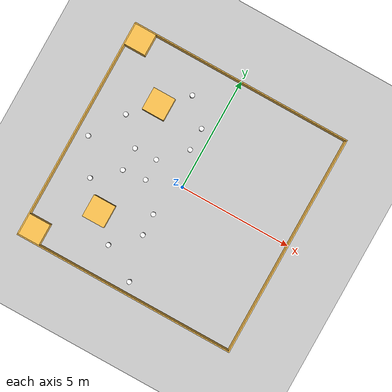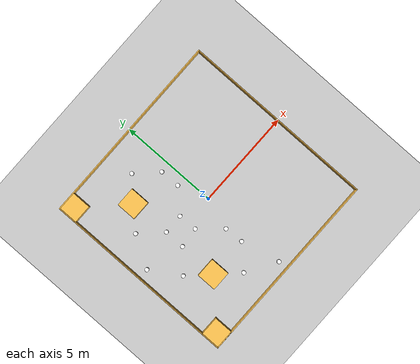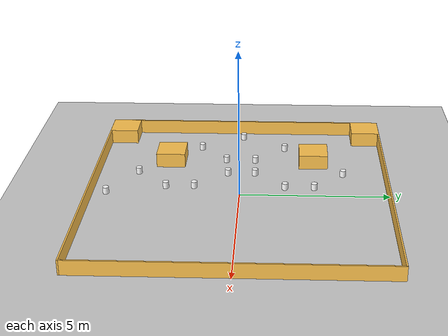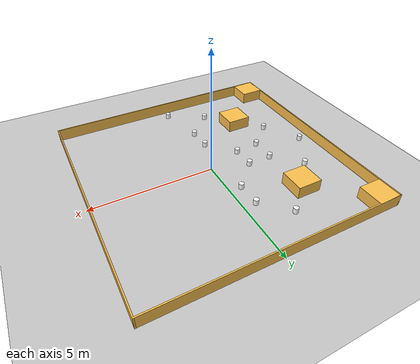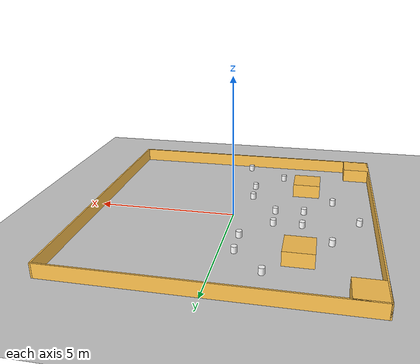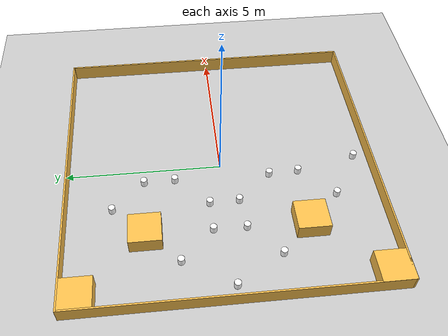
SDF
<sdf version="1.6">
 <world name="default">
  <model name="ground_plane">
   <static>1</static>
   <link name="link">
    <collision name="collision">
     <geometry><plane><normal>0 0 1</normal><size>100 100</size></plane></geometry>
     <surface><friction><ode><mu>100</mu><mu2>50</mu2></ode></friction></surface>
    </collision>
    <visual name="visual">
     <cast_shadows>0</cast_shadows>
     <geometry><plane><normal>0 0 1</normal><size>100 100</size></plane></geometry>
     <material>
      <script><uri>file://media/materials/scripts/gazebo.material</uri><name>Gazebo/Grey</name></script>
     </material>
    </visual>
   </link>
  </model>
  <model name="low-map">
   <pose>-0.009415 0.0011 0 0 -0 0</pose>
   <link name="Wall_27">
    <collision name="Wall_27_Collision">
     <geometry><box><size>9.89993 0.05 0.5</size></box></geometry>
     <pose>0 0 0.25 0 -0 0</pose>
    </collision>
    <visual name="Wall_27_Visual">
     <pose>0 0 0.25 0 -0 0</pose>
     <geometry><box><size>9.89993 0.05 0.5</size></box></geometry>
     <material>
      <script><uri>file://media/materials/scripts/gazebo.material</uri><name>Gazebo/Grey</name></script>
      <ambient>1 0.764706 0.305882 1</ambient>
     </material>
    </visual>
    <pose>0 4.925 0 0 -0 0</pose>
   </link>
   <link name="Wall_28">
    <collision name="Wall_28_Collision">
     <geometry><box><size>9.90017 0.05 0.5</size></box></geometry>
     <pose>0 0 0.25 0 -0 0</pose>
    </collision>
    <visual name="Wall_28_Visual">
     <pose>0 0 0.25 0 -0 0</pose>
     <geometry><box><size>9.90017 0.05 0.5</size></box></geometry>
     <material>
      <script><uri>file://media/materials/scripts/gazebo.material</uri><name>Gazebo/Grey</name></script>
      <ambient>1 0.764706 0.305882 1</ambient>
     </material>
    </visual>
    <pose>4.925 0 0 0 0 -1.5708</pose>
   </link>
   <link name="Wall_29">
    <collision name="Wall_29_Collision">
     <geometry><box><size>9.90007 0.05 0.5</size></box></geometry>
     <pose>0 0 0.25 0 -0 0</pose>
    </collision>
    <visual name="Wall_29_Visual">
     <pose>0 0 0.25 0 -0 0</pose>
     <geometry><box><size>9.90007 0.05 0.5</size></box></geometry>
     <material>
      <script><uri>file://media/materials/scripts/gazebo.material</uri><name>Gazebo/Grey</name></script>
      <ambient>1 0.764706 0.305882 1</ambient>
     </material>
    </visual>
    <pose>0 -4.925 0 0 -0 3.14159</pose>
   </link>
   <link name="Wall_30">
    <collision name="Wall_30_Collision">
     <geometry><box><size>9.9 0.05 0.5</size></box></geometry>
     <pose>0 0 0.25 0 -0 0</pose>
    </collision>
    <visual name="Wall_30_Visual">
     <pose>0 0 0.25 0 -0 0</pose>
     <geometry><box><size>9.9 0.05 0.5</size></box></geometry>
     <material>
      <script><uri>file://media/materials/scripts/gazebo.material</uri><name>Gazebo/Grey</name></script>
      <ambient>1 0.764706 0.305882 1</ambient>
     </material>
    </visual>
    <pose>-4.925 0 0 0 -0 1.5708</pose>
   </link>
   <static>1</static>
  </model>
  <model name="unit_box_0_orange_clone_8">
   <link name="link">
    <inertial>
     <mass>10</mass>
     <inertia><ixx>0.473401</ixx><ixy>0</ixy><ixz>0</ixz><iyy>2.14637</iyy><iyz>0</iyz><izz>2.14637</izz></inertia>
    </inertial>
    <visual name="visual">
     <geometry><box><size>1.00001 1 0.5</size></box></geometry>
     <material>
      <script><name>Gazebo/Grey</name><uri>file://media/materials/scripts/gazebo.material</uri></script>
      <ambient>1 0.765 0.306 1</ambient>
      <diffuse>0.7 0.7 0.7 1</diffuse>
      <specular>0.01 0.01 0.01 1</specular>
      <emissive>0 0 0 1</emissive>
      <shader type="vertex"><normal_map>__default__</normal_map></shader>
     </material>
    </visual>
    <collision name="collision">
     <geometry><box><size>1 1 0.5</size></box></geometry>
     <surface>
      <friction>
       <ode><mu>1</mu><mu2>1</mu2><fdir1>0 0 0</fdir1><slip1>0</slip1><slip2>0</slip2></ode>
       <torsional>
        <coefficient>1</coefficient>
        <patch_radius>0</patch_radius>
        <surface_radius>0</surface_radius>
        <use_patch_radius>1</use_patch_radius>
        <ode><slip>0</slip></ode>
       </torsional>
      </friction>
      <bounce><restitution_coefficient>0</restitution_coefficient><threshold>1e+06</threshold></bounce>
      <contact>
       <collide_without_contact>0</collide_without_contact>
       <collide_without_contact_bitmask>1</collide_without_contact_bitmask>
       <collide_bitmask>1</collide_bitmask>
       <ode>
        <soft_cfm>0</soft_cfm>
        <soft_erp>0.2</soft_erp>
        <kp>1e+13</kp>
        <kd>1</kd>
        <max_vel>0.01</max_vel>
        <min_depth>0</min_depth>
       </ode>
       <bullet>
        <split_impulse>1</split_impulse>
        <split_impulse_penetration_threshold>-0.01</split_impulse_penetration_threshold>
        <soft_cfm>0</soft_cfm>
        <soft_erp>0.2</soft_erp>
        <kp>1e+13</kp>
        <kd>1</kd>
       </bullet>
      </contact>
     </surface>
    </collision>
   </link>
   <static>1</static>
   <pose>-2.5 -2.5 0.25 0 -0 0</pose>
  </model>
  <model name="unit_box_0_orange_clone_8_clone">
   <link name="link">
    <inertial>
     <mass>10</mass>
     <inertia><ixx>0.473401</ixx><ixy>0</ixy><ixz>0</ixz><iyy>2.14637</iyy><iyz>0</iyz><izz>2.14637</izz></inertia>
    </inertial>
    <visual name="visual">
     <geometry><box><size>1.00001 1 0.5</size></box></geometry>
     <material>
      <script><name>Gazebo/Grey</name><uri>file://media/materials/scripts/gazebo.material</uri></script>
      <ambient>1 0.765 0.306 1</ambient>
      <diffuse>0.7 0.7 0.7 1</diffuse>
      <specular>0.01 0.01 0.01 1</specular>
      <emissive>0 0 0 1</emissive>
      <shader type="vertex"><normal_map>__default__</normal_map></shader>
     </material>
    </visual>
    <collision name="collision">
     <geometry><box><size>1 1 0.5</size></box></geometry>
     <surface>
      <friction>
       <ode><mu>1</mu><mu2>1</mu2><fdir1>0 0 0</fdir1><slip1>0</slip1><slip2>0</slip2></ode>
       <torsional>
        <coefficient>1</coefficient>
        <patch_radius>0</patch_radius>
        <surface_radius>0</surface_radius>
        <use_patch_radius>1</use_patch_radius>
        <ode><slip>0</slip></ode>
       </torsional>
      </friction>
      <bounce><restitution_coefficient>0</restitution_coefficient><threshold>1e+06</threshold></bounce>
      <contact>
       <collide_without_contact>0</collide_without_contact>
       <collide_without_contact_bitmask>1</collide_without_contact_bitmask>
       <collide_bitmask>1</collide_bitmask>
       <ode>
        <soft_cfm>0</soft_cfm>
        <soft_erp>0.2</soft_erp>
        <kp>1e+13</kp>
        <kd>1</kd>
        <max_vel>0.01</max_vel>
        <min_depth>0</min_depth>
       </ode>
       <bullet>
        <split_impulse>1</split_impulse>
        <split_impulse_penetration_threshold>-0.01</split_impulse_penetration_threshold>
        <soft_cfm>0</soft_cfm>
        <soft_erp>0.2</soft_erp>
        <kp>1e+13</kp>
        <kd>1</kd>
       </bullet>
      </contact>
     </surface>
    </collision>
   </link>
   <static>1</static>
   <pose>-2.5 2.5 0.25 0 -0 0</pose>
  </model>
  <model name="unit_box_0_orange_clone_7_clone_0">
   <link name="link">
    <inertial>
     <mass>10</mass>
     <inertia><ixx>0.473401</ixx><ixy>0</ixy><ixz>0</ixz><iyy>2.14637</iyy><iyz>0</iyz><izz>2.14637</izz></inertia>
    </inertial>
    <visual name="visual">
     <geometry><box><size>1.00001 1 0.5</size></box></geometry>
     <material>
      <script><name>Gazebo/Grey</name><uri>file://media/materials/scripts/gazebo.material</uri></script>
      <ambient>1 0.765 0.306 1</ambient>
      <diffuse>0.7 0.7 0.7 1</diffuse>
      <specular>0.01 0.01 0.01 1</specular>
      <emissive>0 0 0 1</emissive>
      <shader type="vertex"><normal_map>__default__</normal_map></shader>
     </material>
    </visual>
    <collision name="collision">
     <geometry><box><size>1 1 0.5</size></box></geometry>
     <surface>
      <friction>
       <ode><mu>1</mu><mu2>1</mu2><fdir1>0 0 0</fdir1><slip1>0</slip1><slip2>0</slip2></ode>
       <torsional>
        <coefficient>1</coefficient>
        <patch_radius>0</patch_radius>
        <surface_radius>0</surface_radius>
        <use_patch_radius>1</use_patch_radius>
        <ode><slip>0</slip></ode>
       </torsional>
      </friction>
      <bounce><restitution_coefficient>0</restitution_coefficient><threshold>1e+06</threshold></bounce>
      <contact>
       <collide_without_contact>0</collide_without_contact>
       <collide_without_contact_bitmask>1</collide_without_contact_bitmask>
       <collide_bitmask>1</collide_bitmask>
       <ode>
        <soft_cfm>0</soft_cfm>
        <soft_erp>0.2</soft_erp>
        <kp>1e+13</kp>
        <kd>1</kd>
        <max_vel>0.01</max_vel>
        <min_depth>0</min_depth>
       </ode>
       <bullet>
        <split_impulse>1</split_impulse>
        <split_impulse_penetration_threshold>-0.01</split_impulse_penetration_threshold>
        <soft_cfm>0</soft_cfm>
        <soft_erp>0.2</soft_erp>
        <kp>1e+13</kp>
        <kd>1</kd>
       </bullet>
      </contact>
     </surface>
    </collision>
   </link>
   <static>1</static>
   <pose>-4.45682 -4.44621 0.25 0 -0 0</pose>
  </model>
  <model name="unit_box_0_orange_clone_7_clone_1">
   <link name="link">
    <inertial>
     <mass>10</mass>
     <inertia><ixx>0.473401</ixx><ixy>0</ixy><ixz>0</ixz><iyy>2.14637</iyy><iyz>0</iyz><izz>2.14637</izz></inertia>
    </inertial>
    <visual name="visual">
     <geometry><box><size>1.00001 1 0.5</size></box></geometry>
     <material>
      <script><name>Gazebo/Grey</name><uri>file://media/materials/scripts/gazebo.material</uri></script>
      <ambient>1 0.765 0.306 1</ambient>
      <diffuse>0.7 0.7 0.7 1</diffuse>
      <specular>0.01 0.01 0.01 1</specular>
      <emissive>0 0 0 1</emissive>
      <shader type="vertex"><normal_map>__default__</normal_map></shader>
     </material>
    </visual>
    <collision name="collision">
     <geometry><box><size>1 1 0.5</size></box></geometry>
     <surface>
      <friction>
       <ode><mu>1</mu><mu2>1</mu2><fdir1>0 0 0</fdir1><slip1>0</slip1><slip2>0</slip2></ode>
       <torsional>
        <coefficient>1</coefficient>
        <patch_radius>0</patch_radius>
        <surface_radius>0</surface_radius>
        <use_patch_radius>1</use_patch_radius>
        <ode><slip>0</slip></ode>
       </torsional>
      </friction>
      <bounce><restitution_coefficient>0</restitution_coefficient><threshold>1e+06</threshold></bounce>
      <contact>
       <collide_without_contact>0</collide_without_contact>
       <collide_without_contact_bitmask>1</collide_without_contact_bitmask>
       <collide_bitmask>1</collide_bitmask>
       <ode>
        <soft_cfm>0</soft_cfm>
        <soft_erp>0.2</soft_erp>
        <kp>1e+13</kp>
        <kd>1</kd>
        <max_vel>0.01</max_vel>
        <min_depth>0</min_depth>
       </ode>
       <bullet>
        <split_impulse>1</split_impulse>
        <split_impulse_penetration_threshold>-0.01</split_impulse_penetration_threshold>
        <soft_cfm>0</soft_cfm>
        <soft_erp>0.2</soft_erp>
        <kp>1e+13</kp>
        <kd>1</kd>
       </bullet>
      </contact>
     </surface>
    </collision>
   </link>
   <static>1</static>
   <pose>-4.4589 4.44936 0.25 0 -0 0</pose>
  </model>
  <model name="beer_big_7">
   <link name="link">
    <pose>0 0 0.115 0 -0 0</pose>
    <inertial>
     <mass>1.34731</mass>
     <inertia>
      <ixx>0.0028093</ixx>
      <ixy>0</ixy>
      <ixz>0</ixz>
      <iyy>0.0028093</iyy>
      <iyz>0</iyz>
      <izz>0.00226756</izz>
     </inertia>
    </inertial>
    <visual name="visual">
     <geometry><cylinder><radius>0.102222</radius><length>0.23</length></cylinder></geometry>
     <material>
      <script>
       <uri>model://beer/materials/scripts</uri>
       <uri>model://beer/materials/textures</uri>
       <name>Beer/Diffuse</name>
      </script>
      <ambient>1 1 1 1</ambient>
      <diffuse>1 1 1 1</diffuse>
      <specular>0 0 0 1</specular>
      <emissive>0 0 0 1</emissive>
     </material>
    </visual>
    <collision name="collision">
     <geometry><cylinder><radius>0.102222</radius><length>0.23</length></cylinder></geometry>
     <surface>
      <friction>
       <ode><mu>1</mu><mu2>1</mu2><fdir1>0 0 0</fdir1><slip1>0</slip1><slip2>0</slip2></ode>
       <torsional>
        <coefficient>1</coefficient>
        <patch_radius>0</patch_radius>
        <surface_radius>0</surface_radius>
        <use_patch_radius>1</use_patch_radius>
        <ode><slip>0</slip></ode>
       </torsional>
      </friction>
      <bounce><restitution_coefficient>0</restitution_coefficient><threshold>1e+06</threshold></bounce>
      <contact>
       <collide_without_contact>0</collide_without_contact>
       <collide_without_contact_bitmask>1</collide_without_contact_bitmask>
       <collide_bitmask>1</collide_bitmask>
       <ode>
        <soft_cfm>0</soft_cfm>
        <soft_erp>0.2</soft_erp>
        <kp>1e+13</kp>
        <kd>1</kd>
        <max_vel>0.01</max_vel>
        <min_depth>0</min_depth>
       </ode>
       <bullet>
        <split_impulse>1</split_impulse>
        <split_impulse_penetration_threshold>-0.01</split_impulse_penetration_threshold>
        <soft_cfm>0</soft_cfm>
        <soft_erp>0.2</soft_erp>
        <kp>1e+13</kp>
        <kd>1</kd>
       </bullet>
      </contact>
     </surface>
    </collision>
   </link>
   <static>0</static>
   <pose>-0.509102 -1.54707 0 0 -0 0</pose>
  </model>
  <model name="beer_big_9">
   <link name="link">
    <pose>0 0 0.115 0 -0 0</pose>
    <inertial>
     <mass>1.34731</mass>
     <inertia>
      <ixx>0.0028093</ixx>
      <ixy>0</ixy>
      <ixz>0</ixz>
      <iyy>0.0028093</iyy>
      <iyz>0</iyz>
      <izz>0.00226756</izz>
     </inertia>
    </inertial>
    <visual name="visual">
     <geometry><cylinder><radius>0.102222</radius><length>0.23</length></cylinder></geometry>
     <material>
      <script>
       <uri>model://beer/materials/scripts</uri>
       <uri>model://beer/materials/textures</uri>
       <name>Beer/Diffuse</name>
      </script>
      <ambient>1 1 1 1</ambient>
      <diffuse>1 1 1 1</diffuse>
      <specular>0 0 0 1</specular>
      <emissive>0 0 0 1</emissive>
     </material>
    </visual>
    <collision name="collision">
     <geometry><cylinder><radius>0.102222</radius><length>0.23</length></cylinder></geometry>
     <surface>
      <friction>
       <ode><mu>1</mu><mu2>1</mu2><fdir1>0 0 0</fdir1><slip1>0</slip1><slip2>0</slip2></ode>
       <torsional>
        <coefficient>1</coefficient>
        <patch_radius>0</patch_radius>
        <surface_radius>0</surface_radius>
        <use_patch_radius>1</use_patch_radius>
        <ode><slip>0</slip></ode>
       </torsional>
      </friction>
      <bounce><restitution_coefficient>0</restitution_coefficient><threshold>1e+06</threshold></bounce>
      <contact>
       <collide_without_contact>0</collide_without_contact>
       <collide_without_contact_bitmask>1</collide_without_contact_bitmask>
       <collide_bitmask>1</collide_bitmask>
       <ode>
        <soft_cfm>0</soft_cfm>
        <soft_erp>0.2</soft_erp>
        <kp>1e+13</kp>
        <kd>1</kd>
        <max_vel>0.01</max_vel>
        <min_depth>0</min_depth>
       </ode>
       <bullet>
        <split_impulse>1</split_impulse>
        <split_impulse_penetration_threshold>-0.01</split_impulse_penetration_threshold>
        <soft_cfm>0</soft_cfm>
        <soft_erp>0.2</soft_erp>
        <kp>1e+13</kp>
        <kd>1</kd>
       </bullet>
      </contact>
     </surface>
    </collision>
   </link>
   <static>0</static>
   <pose>-0.469175 -2.49856 0 0 -0 0</pose>
  </model>
  <model name="beer_big_11">
   <link name="link">
    <pose>0 0 0.115 0 -0 0</pose>
    <inertial>
     <mass>1.34731</mass>
     <inertia>
      <ixx>0.0028093</ixx>
      <ixy>0</ixy>
      <ixz>0</ixz>
      <iyy>0.0028093</iyy>
      <iyz>0</iyz>
      <izz>0.00226756</izz>
     </inertia>
    </inertial>
    <visual name="visual">
     <geometry><cylinder><radius>0.102222</radius><length>0.23</length></cylinder></geometry>
     <material>
      <script>
       <uri>model://beer/materials/scripts</uri>
       <uri>model://beer/materials/textures</uri>
       <name>Beer/Diffuse</name>
      </script>
      <ambient>1 1 1 1</ambient>
      <diffuse>1 1 1 1</diffuse>
      <specular>0 0 0 1</specular>
      <emissive>0 0 0 1</emissive>
     </material>
    </visual>
    <collision name="collision">
     <geometry><cylinder><radius>0.102222</radius><length>0.23</length></cylinder></geometry>
     <surface>
      <friction>
       <ode><mu>1</mu><mu2>1</mu2><fdir1>0 0 0</fdir1><slip1>0</slip1><slip2>0</slip2></ode>
       <torsional>
        <coefficient>1</coefficient>
        <patch_radius>0</patch_radius>
        <surface_radius>0</surface_radius>
        <use_patch_radius>1</use_patch_radius>
        <ode><slip>0</slip></ode>
       </torsional>
      </friction>
      <bounce><restitution_coefficient>0</restitution_coefficient><threshold>1e+06</threshold></bounce>
      <contact>
       <collide_without_contact>0</collide_without_contact>
       <collide_without_contact_bitmask>1</collide_without_contact_bitmask>
       <collide_bitmask>1</collide_bitmask>
       <ode>
        <soft_cfm>0</soft_cfm>
        <soft_erp>0.2</soft_erp>
        <kp>1e+13</kp>
        <kd>1</kd>
        <max_vel>0.01</max_vel>
        <min_depth>0</min_depth>
       </ode>
       <bullet>
        <split_impulse>1</split_impulse>
        <split_impulse_penetration_threshold>-0.01</split_impulse_penetration_threshold>
        <soft_cfm>0</soft_cfm>
        <soft_erp>0.2</soft_erp>
        <kp>1e+13</kp>
        <kd>1</kd>
       </bullet>
      </contact>
     </surface>
    </collision>
   </link>
   <static>0</static>
   <pose>-1.50904 -3.54688 0 0 -0 0</pose>
  </model>
  <model name="beer_big_12">
   <link name="link">
    <pose>0 0 0.115 0 -0 0</pose>
    <inertial>
     <mass>1.34731</mass>
     <inertia>
      <ixx>0.0028093</ixx>
      <ixy>0</ixy>
      <ixz>0</ixz>
      <iyy>0.0028093</iyy>
      <iyz>0</iyz>
      <izz>0.00226756</izz>
     </inertia>
    </inertial>
    <visual name="visual">
     <geometry><cylinder><radius>0.102222</radius><length>0.23</length></cylinder></geometry>
     <material>
      <script>
       <uri>model://beer/materials/scripts</uri>
       <uri>model://beer/materials/textures</uri>
       <name>Beer/Diffuse</name>
      </script>
      <ambient>1 1 1 1</ambient>
      <diffuse>1 1 1 1</diffuse>
      <specular>0 0 0 1</specular>
      <emissive>0 0 0 1</emissive>
     </material>
    </visual>
    <collision name="collision">
     <geometry><cylinder><radius>0.102222</radius><length>0.23</length></cylinder></geometry>
     <surface>
      <friction>
       <ode><mu>1</mu><mu2>1</mu2><fdir1>0 0 0</fdir1><slip1>0</slip1><slip2>0</slip2></ode>
       <torsional>
        <coefficient>1</coefficient>
        <patch_radius>0</patch_radius>
        <surface_radius>0</surface_radius>
        <use_patch_radius>1</use_patch_radius>
        <ode><slip>0</slip></ode>
       </torsional>
      </friction>
      <bounce><restitution_coefficient>0</restitution_coefficient><threshold>1e+06</threshold></bounce>
      <contact>
       <collide_without_contact>0</collide_without_contact>
       <collide_without_contact_bitmask>1</collide_without_contact_bitmask>
       <collide_bitmask>1</collide_bitmask>
       <ode>
        <soft_cfm>0</soft_cfm>
        <soft_erp>0.2</soft_erp>
        <kp>1e+13</kp>
        <kd>1</kd>
        <max_vel>0.01</max_vel>
        <min_depth>0</min_depth>
       </ode>
       <bullet>
        <split_impulse>1</split_impulse>
        <split_impulse_penetration_threshold>-0.01</split_impulse_penetration_threshold>
        <soft_cfm>0</soft_cfm>
        <soft_erp>0.2</soft_erp>
        <kp>1e+13</kp>
        <kd>1</kd>
       </bullet>
      </contact>
     </surface>
    </collision>
   </link>
   <static>0</static>
   <pose>-0.019658 -4.45128 0 0 -0 0</pose>
  </model>
  <model name="beer_big_14">
   <link name="link">
    <pose>0 0 0.115 0 -0 0</pose>
    <inertial>
     <mass>1.34731</mass>
     <inertia>
      <ixx>0.0028093</ixx>
      <ixy>0</ixy>
      <ixz>0</ixz>
      <iyy>0.0028093</iyy>
      <iyz>0</iyz>
      <izz>0.00226756</izz>
     </inertia>
    </inertial>
    <visual name="visual">
     <geometry><cylinder><radius>0.102222</radius><length>0.23</length></cylinder></geometry>
     <material>
      <script>
       <uri>model://beer/materials/scripts</uri>
       <uri>model://beer/materials/textures</uri>
       <name>Beer/Diffuse</name>
      </script>
      <ambient>1 1 1 1</ambient>
      <diffuse>1 1 1 1</diffuse>
      <specular>0 0 0 1</specular>
      <emissive>0 0 0 1</emissive>
     </material>
    </visual>
    <collision name="collision">
     <geometry><cylinder><radius>0.102222</radius><length>0.23</length></cylinder></geometry>
     <surface>
      <friction>
       <ode><mu>1</mu><mu2>1</mu2><fdir1>0 0 0</fdir1><slip1>0</slip1><slip2>0</slip2></ode>
       <torsional>
        <coefficient>1</coefficient>
        <patch_radius>0</patch_radius>
        <surface_radius>0</surface_radius>
        <use_patch_radius>1</use_patch_radius>
        <ode><slip>0</slip></ode>
       </torsional>
      </friction>
      <bounce><restitution_coefficient>0</restitution_coefficient><threshold>1e+06</threshold></bounce>
      <contact>
       <collide_without_contact>0</collide_without_contact>
       <collide_without_contact_bitmask>1</collide_without_contact_bitmask>
       <collide_bitmask>1</collide_bitmask>
       <ode>
        <soft_cfm>0</soft_cfm>
        <soft_erp>0.2</soft_erp>
        <kp>1e+13</kp>
        <kd>1</kd>
        <max_vel>0.01</max_vel>
        <min_depth>0</min_depth>
       </ode>
       <bullet>
        <split_impulse>1</split_impulse>
        <split_impulse_penetration_threshold>-0.01</split_impulse_penetration_threshold>
        <soft_cfm>0</soft_cfm>
        <soft_erp>0.2</soft_erp>
        <kp>1e+13</kp>
        <kd>1</kd>
       </bullet>
      </contact>
     </surface>
    </collision>
   </link>
   <static>0</static>
   <pose>-1.47418 -0.458885 0 0 -0 0</pose>
  </model>
  <model name="beer_big_15">
   <link name="link">
    <pose>0 0 0.115 0 -0 0</pose>
    <inertial>
     <mass>1.34731</mass>
     <inertia>
      <ixx>0.0028093</ixx>
      <ixy>0</ixy>
      <ixz>0</ixz>
      <iyy>0.0028093</iyy>
      <iyz>0</iyz>
      <izz>0.00226756</izz>
     </inertia>
    </inertial>
    <visual name="visual">
     <geometry><cylinder><radius>0.102222</radius><length>0.23</length></cylinder></geometry>
     <material>
      <script>
       <uri>model://beer/materials/scripts</uri>
       <uri>model://beer/materials/textures</uri>
       <name>Beer/Diffuse</name>
      </script>
      <ambient>1 1 1 1</ambient>
      <diffuse>1 1 1 1</diffuse>
      <specular>0 0 0 1</specular>
      <emissive>0 0 0 1</emissive>
     </material>
    </visual>
    <collision name="collision">
     <geometry><cylinder><radius>0.102222</radius><length>0.23</length></cylinder></geometry>
     <surface>
      <friction>
       <ode><mu>1</mu><mu2>1</mu2><fdir1>0 0 0</fdir1><slip1>0</slip1><slip2>0</slip2></ode>
       <torsional>
        <coefficient>1</coefficient>
        <patch_radius>0</patch_radius>
        <surface_radius>0</surface_radius>
        <use_patch_radius>1</use_patch_radius>
        <ode><slip>0</slip></ode>
       </torsional>
      </friction>
      <bounce><restitution_coefficient>0</restitution_coefficient><threshold>1e+06</threshold></bounce>
      <contact>
       <collide_without_contact>0</collide_without_contact>
       <collide_without_contact_bitmask>1</collide_without_contact_bitmask>
       <collide_bitmask>1</collide_bitmask>
       <ode>
        <soft_cfm>0</soft_cfm>
        <soft_erp>0.2</soft_erp>
        <kp>1e+13</kp>
        <kd>1</kd>
        <max_vel>0.01</max_vel>
        <min_depth>0</min_depth>
       </ode>
       <bullet>
        <split_impulse>1</split_impulse>
        <split_impulse_penetration_threshold>-0.01</split_impulse_penetration_threshold>
        <soft_cfm>0</soft_cfm>
        <soft_erp>0.2</soft_erp>
        <kp>1e+13</kp>
        <kd>1</kd>
       </bullet>
      </contact>
     </surface>
    </collision>
   </link>
   <static>0</static>
   <pose>-1.493 0.474291 0 0 -0 0</pose>
  </model>
  <model name="beer_big_16">
   <link name="link">
    <pose>0 0 0.115 0 -0 0</pose>
    <inertial>
     <mass>1.34731</mass>
     <inertia>
      <ixx>0.0028093</ixx>
      <ixy>0</ixy>
      <ixz>0</ixz>
      <iyy>0.0028093</iyy>
      <iyz>0</iyz>
      <izz>0.00226756</izz>
     </inertia>
    </inertial>
    <visual name="visual">
     <geometry><cylinder><radius>0.102222</radius><length>0.23</length></cylinder></geometry>
     <material>
      <script>
       <uri>model://beer/materials/scripts</uri>
       <uri>model://beer/materials/textures</uri>
       <name>Beer/Diffuse</name>
      </script>
      <ambient>1 1 1 1</ambient>
      <diffuse>1 1 1 1</diffuse>
      <specular>0 0 0 1</specular>
      <emissive>0 0 0 1</emissive>
     </material>
    </visual>
    <collision name="collision">
     <geometry><cylinder><radius>0.102222</radius><length>0.23</length></cylinder></geometry>
     <surface>
      <friction>
       <ode><mu>1</mu><mu2>1</mu2><fdir1>0 0 0</fdir1><slip1>0</slip1><slip2>0</slip2></ode>
       <torsional>
        <coefficient>1</coefficient>
        <patch_radius>0</patch_radius>
        <surface_radius>0</surface_radius>
        <use_patch_radius>1</use_patch_radius>
        <ode><slip>0</slip></ode>
       </torsional>
      </friction>
      <bounce><restitution_coefficient>0</restitution_coefficient><threshold>1e+06</threshold></bounce>
      <contact>
       <collide_without_contact>0</collide_without_contact>
       <collide_without_contact_bitmask>1</collide_without_contact_bitmask>
       <collide_bitmask>1</collide_bitmask>
       <ode>
        <soft_cfm>0</soft_cfm>
        <soft_erp>0.2</soft_erp>
        <kp>1e+13</kp>
        <kd>1</kd>
        <max_vel>0.01</max_vel>
        <min_depth>0</min_depth>
       </ode>
       <bullet>
        <split_impulse>1</split_impulse>
        <split_impulse_penetration_threshold>-0.01</split_impulse_penetration_threshold>
        <soft_cfm>0</soft_cfm>
        <soft_erp>0.2</soft_erp>
        <kp>1e+13</kp>
        <kd>1</kd>
       </bullet>
      </contact>
     </surface>
    </collision>
   </link>
   <static>0</static>
   <pose>-2.49184 -0.562493 0 0 -0 0</pose>
  </model>
  <model name="beer_big_17">
   <link name="link">
    <pose>0 0 0.115 0 -0 0</pose>
    <inertial>
     <mass>1.34731</mass>
     <inertia>
      <ixx>0.0028093</ixx>
      <ixy>0</ixy>
      <ixz>0</ixz>
      <iyy>0.0028093</iyy>
      <iyz>0</iyz>
      <izz>0.00226756</izz>
     </inertia>
    </inertial>
    <visual name="visual">
     <geometry><cylinder><radius>0.102222</radius><length>0.23</length></cylinder></geometry>
     <material>
      <script>
       <uri>model://beer/materials/scripts</uri>
       <uri>model://beer/materials/textures</uri>
       <name>Beer/Diffuse</name>
      </script>
      <ambient>1 1 1 1</ambient>
      <diffuse>1 1 1 1</diffuse>
      <specular>0 0 0 1</specular>
      <emissive>0 0 0 1</emissive>
     </material>
    </visual>
    <collision name="collision">
     <geometry><cylinder><radius>0.102222</radius><length>0.23</length></cylinder></geometry>
     <surface>
      <friction>
       <ode><mu>1</mu><mu2>1</mu2><fdir1>0 0 0</fdir1><slip1>0</slip1><slip2>0</slip2></ode>
       <torsional>
        <coefficient>1</coefficient>
        <patch_radius>0</patch_radius>
        <surface_radius>0</surface_radius>
        <use_patch_radius>1</use_patch_radius>
        <ode><slip>0</slip></ode>
       </torsional>
      </friction>
      <bounce><restitution_coefficient>0</restitution_coefficient><threshold>1e+06</threshold></bounce>
      <contact>
       <collide_without_contact>0</collide_without_contact>
       <collide_without_contact_bitmask>1</collide_without_contact_bitmask>
       <collide_bitmask>1</collide_bitmask>
       <ode>
        <soft_cfm>0</soft_cfm>
        <soft_erp>0.2</soft_erp>
        <kp>1e+13</kp>
        <kd>1</kd>
        <max_vel>0.01</max_vel>
        <min_depth>0</min_depth>
       </ode>
       <bullet>
        <split_impulse>1</split_impulse>
        <split_impulse_penetration_threshold>-0.01</split_impulse_penetration_threshold>
        <soft_cfm>0</soft_cfm>
        <soft_erp>0.2</soft_erp>
        <kp>1e+13</kp>
        <kd>1</kd>
       </bullet>
      </contact>
     </surface>
    </collision>
   </link>
   <static>0</static>
   <pose>-2.48489 0.460005 0 0 -0 0</pose>
  </model>
  <model name="beer_big_18">
   <link name="link">
    <pose>0 0 0.115 0 -0 0</pose>
    <inertial>
     <mass>1.34731</mass>
     <inertia>
      <ixx>0.0028093</ixx>
      <ixy>0</ixy>
      <ixz>0</ixz>
      <iyy>0.0028093</iyy>
      <iyz>0</iyz>
      <izz>0.00226756</izz>
     </inertia>
    </inertial>
    <visual name="visual">
     <geometry><cylinder><radius>0.102222</radius><length>0.23</length></cylinder></geometry>
     <material>
      <script>
       <uri>model://beer/materials/scripts</uri>
       <uri>model://beer/materials/textures</uri>
       <name>Beer/Diffuse</name>
      </script>
      <ambient>1 1 1 1</ambient>
      <diffuse>1 1 1 1</diffuse>
      <specular>0 0 0 1</specular>
      <emissive>0 0 0 1</emissive>
     </material>
    </visual>
    <collision name="collision">
     <geometry><cylinder><radius>0.102222</radius><length>0.23</length></cylinder></geometry>
     <surface>
      <friction>
       <ode><mu>1</mu><mu2>1</mu2><fdir1>0 0 0</fdir1><slip1>0</slip1><slip2>0</slip2></ode>
       <torsional>
        <coefficient>1</coefficient>
        <patch_radius>0</patch_radius>
        <surface_radius>0</surface_radius>
        <use_patch_radius>1</use_patch_radius>
        <ode><slip>0</slip></ode>
       </torsional>
      </friction>
      <bounce><restitution_coefficient>0</restitution_coefficient><threshold>1e+06</threshold></bounce>
      <contact>
       <collide_without_contact>0</collide_without_contact>
       <collide_without_contact_bitmask>1</collide_without_contact_bitmask>
       <collide_bitmask>1</collide_bitmask>
       <ode>
        <soft_cfm>0</soft_cfm>
        <soft_erp>0.2</soft_erp>
        <kp>1e+13</kp>
        <kd>1</kd>
        <max_vel>0.01</max_vel>
        <min_depth>0</min_depth>
       </ode>
       <bullet>
        <split_impulse>1</split_impulse>
        <split_impulse_penetration_threshold>-0.01</split_impulse_penetration_threshold>
        <soft_cfm>0</soft_cfm>
        <soft_erp>0.2</soft_erp>
        <kp>1e+13</kp>
        <kd>1</kd>
       </bullet>
      </contact>
     </surface>
    </collision>
   </link>
   <static>0</static>
   <pose>-3.50732 -1.50381 0 0 -0 0</pose>
  </model>
  <model name="beer_big_19">
   <link name="link">
    <pose>0 0 0.115 0 -0 0</pose>
    <inertial>
     <mass>1.34731</mass>
     <inertia>
      <ixx>0.0028093</ixx>
      <ixy>0</ixy>
      <ixz>0</ixz>
      <iyy>0.0028093</iyy>
      <iyz>0</iyz>
      <izz>0.00226756</izz>
     </inertia>
    </inertial>
    <visual name="visual">
     <geometry><cylinder><radius>0.102222</radius><length>0.23</length></cylinder></geometry>
     <material>
      <script>
       <uri>model://beer/materials/scripts</uri>
       <uri>model://beer/materials/textures</uri>
       <name>Beer/Diffuse</name>
      </script>
      <ambient>1 1 1 1</ambient>
      <diffuse>1 1 1 1</diffuse>
      <specular>0 0 0 1</specular>
      <emissive>0 0 0 1</emissive>
     </material>
    </visual>
    <collision name="collision">
     <geometry><cylinder><radius>0.102222</radius><length>0.23</length></cylinder></geometry>
     <surface>
      <friction>
       <ode><mu>1</mu><mu2>1</mu2><fdir1>0 0 0</fdir1><slip1>0</slip1><slip2>0</slip2></ode>
       <torsional>
        <coefficient>1</coefficient>
        <patch_radius>0</patch_radius>
        <surface_radius>0</surface_radius>
        <use_patch_radius>1</use_patch_radius>
        <ode><slip>0</slip></ode>
       </torsional>
      </friction>
      <bounce><restitution_coefficient>0</restitution_coefficient><threshold>1e+06</threshold></bounce>
      <contact>
       <collide_without_contact>0</collide_without_contact>
       <collide_without_contact_bitmask>1</collide_without_contact_bitmask>
       <collide_bitmask>1</collide_bitmask>
       <ode>
        <soft_cfm>0</soft_cfm>
        <soft_erp>0.2</soft_erp>
        <kp>1e+13</kp>
        <kd>1</kd>
        <max_vel>0.01</max_vel>
        <min_depth>0</min_depth>
       </ode>
       <bullet>
        <split_impulse>1</split_impulse>
        <split_impulse_penetration_threshold>-0.01</split_impulse_penetration_threshold>
        <soft_cfm>0</soft_cfm>
        <soft_erp>0.2</soft_erp>
        <kp>1e+13</kp>
        <kd>1</kd>
       </bullet>
      </contact>
     </surface>
    </collision>
   </link>
   <static>0</static>
   <pose>-3.49605 1.49687 0 0 -0 0</pose>
  </model>
  <model name="beer_big_20">
   <link name="link">
    <pose>0 0 0.115 0 -0 0</pose>
    <inertial>
     <mass>1.34731</mass>
     <inertia>
      <ixx>0.0028093</ixx>
      <ixy>0</ixy>
      <ixz>0</ixz>
      <iyy>0.0028093</iyy>
      <iyz>0</iyz>
      <izz>0.00226756</izz>
     </inertia>
    </inertial>
    <visual name="visual">
     <geometry><cylinder><radius>0.102222</radius><length>0.23</length></cylinder></geometry>
     <material>
      <script>
       <uri>model://beer/materials/scripts</uri>
       <uri>model://beer/materials/textures</uri>
       <name>Beer/Diffuse</name>
      </script>
      <ambient>1 1 1 1</ambient>
      <diffuse>1 1 1 1</diffuse>
      <specular>0 0 0 1</specular>
      <emissive>0 0 0 1</emissive>
     </material>
    </visual>
    <collision name="collision">
     <geometry><cylinder><radius>0.102222</radius><length>0.23</length></cylinder></geometry>
     <surface>
      <friction>
       <ode><mu>1</mu><mu2>1</mu2><fdir1>0 0 0</fdir1><slip1>0</slip1><slip2>0</slip2></ode>
       <torsional>
        <coefficient>1</coefficient>
        <patch_radius>0</patch_radius>
        <surface_radius>0</surface_radius>
        <use_patch_radius>1</use_patch_radius>
        <ode><slip>0</slip></ode>
       </torsional>
      </friction>
      <bounce><restitution_coefficient>0</restitution_coefficient><threshold>1e+06</threshold></bounce>
      <contact>
       <collide_without_contact>0</collide_without_contact>
       <collide_without_contact_bitmask>1</collide_without_contact_bitmask>
       <collide_bitmask>1</collide_bitmask>
       <ode>
        <soft_cfm>0</soft_cfm>
        <soft_erp>0.2</soft_erp>
        <kp>1e+13</kp>
        <kd>1</kd>
        <max_vel>0.01</max_vel>
        <min_depth>0</min_depth>
       </ode>
       <bullet>
        <split_impulse>1</split_impulse>
        <split_impulse_penetration_threshold>-0.01</split_impulse_penetration_threshold>
        <soft_cfm>0</soft_cfm>
        <soft_erp>0.2</soft_erp>
        <kp>1e+13</kp>
        <kd>1</kd>
       </bullet>
      </contact>
     </surface>
    </collision>
   </link>
   <static>0</static>
   <pose>-4.41915 -0.024683 0 0 -0 0</pose>
  </model>
  <model name="beer_big_21">
   <link name="link">
    <pose>0 0 0.115 0 -0 0</pose>
    <inertial>
     <mass>1.34731</mass>
     <inertia>
      <ixx>0.0028093</ixx>
      <ixy>0</ixy>
      <ixz>0</ixz>
      <iyy>0.0028093</iyy>
      <iyz>0</iyz>
      <izz>0.00226756</izz>
     </inertia>
    </inertial>
    <visual name="visual">
     <geometry><cylinder><radius>0.102222</radius><length>0.23</length></cylinder></geometry>
     <material>
      <script>
       <uri>model://beer/materials/scripts</uri>
       <uri>model://beer/materials/textures</uri>
       <name>Beer/Diffuse</name>
      </script>
      <ambient>1 1 1 1</ambient>
      <diffuse>1 1 1 1</diffuse>
      <specular>0 0 0 1</specular>
      <emissive>0 0 0 1</emissive>
     </material>
    </visual>
    <collision name="collision">
     <geometry><cylinder><radius>0.102222</radius><length>0.23</length></cylinder></geometry>
     <surface>
      <friction>
       <ode><mu>1</mu><mu2>1</mu2><fdir1>0 0 0</fdir1><slip1>0</slip1><slip2>0</slip2></ode>
       <torsional>
        <coefficient>1</coefficient>
        <patch_radius>0</patch_radius>
        <surface_radius>0</surface_radius>
        <use_patch_radius>1</use_patch_radius>
        <ode><slip>0</slip></ode>
       </torsional>
      </friction>
      <bounce><restitution_coefficient>0</restitution_coefficient><threshold>1e+06</threshold></bounce>
      <contact>
       <collide_without_contact>0</collide_without_contact>
       <collide_without_contact_bitmask>1</collide_without_contact_bitmask>
       <collide_bitmask>1</collide_bitmask>
       <ode>
        <soft_cfm>0</soft_cfm>
        <soft_erp>0.2</soft_erp>
        <kp>1e+13</kp>
        <kd>1</kd>
        <max_vel>0.01</max_vel>
        <min_depth>0</min_depth>
       </ode>
       <bullet>
        <split_impulse>1</split_impulse>
        <split_impulse_penetration_threshold>-0.01</split_impulse_penetration_threshold>
        <soft_cfm>0</soft_cfm>
        <soft_erp>0.2</soft_erp>
        <kp>1e+13</kp>
        <kd>1</kd>
       </bullet>
      </contact>
     </surface>
    </collision>
   </link>
   <static>0</static>
   <pose>-0.476351 1.50971 0 0 -0 0</pose>
  </model>
  <model name="beer_big_23">
   <link name="link">
    <pose>0 0 0.115 0 -0 0</pose>
    <inertial>
     <mass>1.34731</mass>
     <inertia>
      <ixx>0.0028093</ixx>
      <ixy>0</ixy>
      <ixz>0</ixz>
      <iyy>0.0028093</iyy>
      <iyz>0</iyz>
      <izz>0.00226756</izz>
     </inertia>
    </inertial>
    <visual name="visual">
     <geometry><cylinder><radius>0.102222</radius><length>0.23</length></cylinder></geometry>
     <material>
      <script>
       <uri>model://beer/materials/scripts</uri>
       <uri>model://beer/materials/textures</uri>
       <name>Beer/Diffuse</name>
      </script>
      <ambient>1 1 1 1</ambient>
      <diffuse>1 1 1 1</diffuse>
      <specular>0 0 0 1</specular>
      <emissive>0 0 0 1</emissive>
     </material>
    </visual>
    <collision name="collision">
     <geometry><cylinder><radius>0.102222</radius><length>0.23</length></cylinder></geometry>
     <surface>
      <friction>
       <ode><mu>1</mu><mu2>1</mu2><fdir1>0 0 0</fdir1><slip1>0</slip1><slip2>0</slip2></ode>
       <torsional>
        <coefficient>1</coefficient>
        <patch_radius>0</patch_radius>
        <surface_radius>0</surface_radius>
        <use_patch_radius>1</use_patch_radius>
        <ode><slip>0</slip></ode>
       </torsional>
      </friction>
      <bounce><restitution_coefficient>0</restitution_coefficient><threshold>1e+06</threshold></bounce>
      <contact>
       <collide_without_contact>0</collide_without_contact>
       <collide_without_contact_bitmask>1</collide_without_contact_bitmask>
       <collide_bitmask>1</collide_bitmask>
       <ode>
        <soft_cfm>0</soft_cfm>
        <soft_erp>0.2</soft_erp>
        <kp>1e+13</kp>
        <kd>1</kd>
        <max_vel>0.01</max_vel>
        <min_depth>0</min_depth>
       </ode>
       <bullet>
        <split_impulse>1</split_impulse>
        <split_impulse_penetration_threshold>-0.01</split_impulse_penetration_threshold>
        <soft_cfm>0</soft_cfm>
        <soft_erp>0.2</soft_erp>
        <kp>1e+13</kp>
        <kd>1</kd>
       </bullet>
      </contact>
     </surface>
    </collision>
   </link>
   <static>0</static>
   <pose>-0.490782 2.49409 0 0 -0 0</pose>
  </model>
  <model name="beer_big_25">
   <link name="link">
    <pose>0 0 0.115 0 -0 0</pose>
    <inertial>
     <mass>1.34731</mass>
     <inertia>
      <ixx>0.0028093</ixx>
      <ixy>0</ixy>
      <ixz>0</ixz>
      <iyy>0.0028093</iyy>
      <iyz>0</iyz>
      <izz>0.00226756</izz>
     </inertia>
    </inertial>
    <visual name="visual">
     <geometry><cylinder><radius>0.102222</radius><length>0.23</length></cylinder></geometry>
     <material>
      <script>
       <uri>model://beer/materials/scripts</uri>
       <uri>model://beer/materials/textures</uri>
       <name>Beer/Diffuse</name>
      </script>
      <ambient>1 1 1 1</ambient>
      <diffuse>1 1 1 1</diffuse>
      <specular>0 0 0 1</specular>
      <emissive>0 0 0 1</emissive>
     </material>
    </visual>
    <collision name="collision">
     <geometry><cylinder><radius>0.102222</radius><length>0.23</length></cylinder></geometry>
     <surface>
      <friction>
       <ode><mu>1</mu><mu2>1</mu2><fdir1>0 0 0</fdir1><slip1>0</slip1><slip2>0</slip2></ode>
       <torsional>
        <coefficient>1</coefficient>
        <patch_radius>0</patch_radius>
        <surface_radius>0</surface_radius>
        <use_patch_radius>1</use_patch_radius>
        <ode><slip>0</slip></ode>
       </torsional>
      </friction>
      <bounce><restitution_coefficient>0</restitution_coefficient><threshold>1e+06</threshold></bounce>
      <contact>
       <collide_without_contact>0</collide_without_contact>
       <collide_without_contact_bitmask>1</collide_without_contact_bitmask>
       <collide_bitmask>1</collide_bitmask>
       <ode>
        <soft_cfm>0</soft_cfm>
        <soft_erp>0.2</soft_erp>
        <kp>1e+13</kp>
        <kd>1</kd>
        <max_vel>0.01</max_vel>
        <min_depth>0</min_depth>
       </ode>
       <bullet>
        <split_impulse>1</split_impulse>
        <split_impulse_penetration_threshold>-0.01</split_impulse_penetration_threshold>
        <soft_cfm>0</soft_cfm>
        <soft_erp>0.2</soft_erp>
        <kp>1e+13</kp>
        <kd>1</kd>
       </bullet>
      </contact>
     </surface>
    </collision>
   </link>
   <static>0</static>
   <pose>-1.48779 3.50529 0 0 -0 0</pose>
  </model>
 </world>
</sdf>
